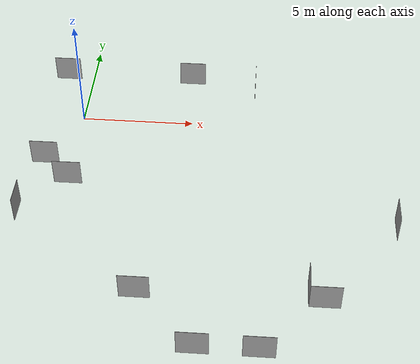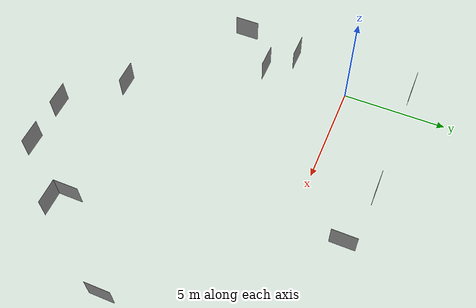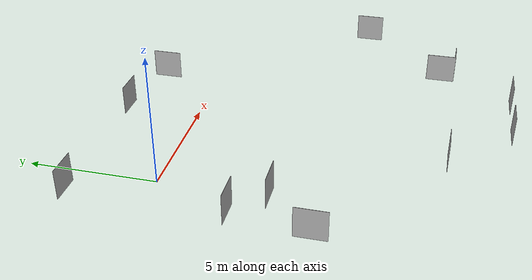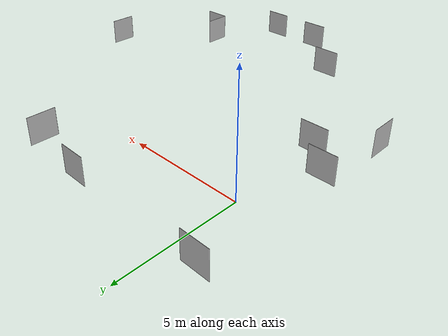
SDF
<sdf version="1.4">
 <world name="default">
  <scene><ambient>0.5 0.5 0.5 1</ambient><background>0.5 0.5 0.5 1</background><shadows>false</shadows></scene>
  <physics type="ode">
   <gravity>0 0 -9.81</gravity>
   <ode>
    <solver><type>quick</type><iters>10</iters><sor>1.3</sor></solver>
    <constraints>
     <cfm>0.0</cfm>
     <erp>0.2</erp>
     <contact_max_correcting_vel>100.0</contact_max_correcting_vel>
     <contact_surface_layer>0.001</contact_surface_layer>
    </constraints>
   </ode>
   <real_time_update_rate>1000</real_time_update_rate>
   <max_step_size>0.001</max_step_size>
  </physics>
  <light type="directional" name="directional_light_1">
   <cast_shadows>false</cast_shadows>
   <pose>0 0 30 0.1 0.1 0</pose>
   <diffuse>1.0 1.0 1.0 1</diffuse>
   <specular>.1 .1 .1 1</specular>
   <attenuation><range>300</range></attenuation>
   <direction>0.1 0.1 -1</direction>
  </light>
  <model name="small_wall_qr_5">
   <static>true</static>
   <link name="small_wall_qr_5_link">
    <pose>-1.2 2.4 0 0 0 0</pose>
    <collision name="small_wall_qr_5_collision">
     <geometry><mesh><uri>file://small_wall_qr_101.dae</uri><scale>1 1 1</scale></mesh></geometry>
    </collision>
    <visual name="small_wall_qr_5_visual">
     <cast_shadows>false</cast_shadows>
     <geometry><mesh><uri>file://small_wall_qr_101.dae</uri><scale>1 1 1</scale></mesh></geometry>
    </visual>
   </link>
  </model>
  <model name="small_wall_qr_7">
   <static>true</static>
   <link name="small_wall_qr_7_link">
    <pose>4.8 2.4 0 0 0 0</pose>
    <collision name="small_wall_qr_7_collision">
     <geometry><mesh><uri>file://small_wall_qr_102.dae</uri><scale>1 1 1</scale></mesh></geometry>
    </collision>
    <visual name="small_wall_qr_7_visual">
     <cast_shadows>false</cast_shadows>
     <geometry><mesh><uri>file://small_wall_qr_102.dae</uri><scale>1 1 1</scale></mesh></geometry>
    </visual>
   </link>
  </model>
  <model name="small_wall_qr_9">
   <static>true</static>
   <link name="small_wall_qr_9_link">
    <pose>7.2 2.4 0 0 0 -1.5708</pose>
    <collision name="small_wall_qr_9_collision">
     <geometry><mesh><uri>file://small_wall_qr_103.dae</uri><scale>1 1 1</scale></mesh></geometry>
    </collision>
    <visual name="small_wall_qr_9_visual">
     <cast_shadows>false</cast_shadows>
     <geometry><mesh><uri>file://small_wall_qr_103.dae</uri><scale>1 1 1</scale></mesh></geometry>
    </visual>
   </link>
  </model>
  <model name="small_wall_qr_13">
   <static>true</static>
   <link name="small_wall_qr_13_link">
    <pose>9.6 -9.6 0 0 0 -1.5708</pose>
    <collision name="small_wall_qr_13_collision">
     <geometry><mesh><uri>file://small_wall_qr_104.dae</uri><scale>1 1 1</scale></mesh></geometry>
    </collision>
    <visual name="small_wall_qr_13_visual">
     <cast_shadows>false</cast_shadows>
     <geometry><mesh><uri>file://small_wall_qr_104.dae</uri><scale>1 1 1</scale></mesh></geometry>
    </visual>
   </link>
  </model>
  <model name="small_wall_qr_15">
   <static>true</static>
   <link name="small_wall_qr_15_link">
    <pose>10.8 -10.8 0 0 0 0</pose>
    <collision name="small_wall_qr_15_collision">
     <geometry><mesh><uri>file://small_wall_qr_105.dae</uri><scale>1 1 1</scale></mesh></geometry>
    </collision>
    <visual name="small_wall_qr_15_visual">
     <cast_shadows>false</cast_shadows>
     <geometry><mesh><uri>file://small_wall_qr_105.dae</uri><scale>1 1 1</scale></mesh></geometry>
    </visual>
   </link>
  </model>
  <model name="small_wall_qr_17">
   <static>true</static>
   <link name="small_wall_qr_17_link">
    <pose>8.4 -12 0 0 0 -3.14159</pose>
    <collision name="small_wall_qr_17_collision">
     <geometry><mesh><uri>file://small_wall_qr_106.dae</uri><scale>1 1 1</scale></mesh></geometry>
    </collision>
    <visual name="small_wall_qr_17_visual">
     <cast_shadows>false</cast_shadows>
     <geometry><mesh><uri>file://small_wall_qr_106.dae</uri><scale>1 1 1</scale></mesh></geometry>
    </visual>
   </link>
  </model>
  <model name="small_wall_qr_18">
   <static>true</static>
   <link name="small_wall_qr_18_link">
    <pose>6 -12 0 0 0 -3.14159</pose>
    <collision name="small_wall_qr_18_collision">
     <geometry><mesh><uri>file://small_wall_qr_107.dae</uri><scale>1 1 1</scale></mesh></geometry>
    </collision>
    <visual name="small_wall_qr_18_visual">
     <cast_shadows>false</cast_shadows>
     <geometry><mesh><uri>file://small_wall_qr_107.dae</uri><scale>1 1 1</scale></mesh></geometry>
    </visual>
   </link>
  </model>
  <model name="small_wall_qr_20">
   <static>true</static>
   <link name="small_wall_qr_20_link">
    <pose>3.6 -9.6 0 0 0 -3.14159</pose>
    <collision name="small_wall_qr_20_collision">
     <geometry><mesh><uri>file://small_wall_qr_108.dae</uri><scale>1 1 1</scale></mesh></geometry>
    </collision>
    <visual name="small_wall_qr_20_visual">
     <cast_shadows>false</cast_shadows>
     <geometry><mesh><uri>file://small_wall_qr_108.dae</uri><scale>1 1 1</scale></mesh></geometry>
    </visual>
   </link>
  </model>
  <model name="small_wall_qr_22">
   <static>true</static>
   <link name="small_wall_qr_22_link">
    <pose>-1.2 -6 0 0 0 -4.71239</pose>
    <collision name="small_wall_qr_22_collision">
     <geometry><mesh><uri>file://small_wall_qr_109.dae</uri><scale>1 1 1</scale></mesh></geometry>
    </collision>
    <visual name="small_wall_qr_22_visual">
     <cast_shadows>false</cast_shadows>
     <geometry><mesh><uri>file://small_wall_qr_109.dae</uri><scale>1 1 1</scale></mesh></geometry>
    </visual>
   </link>
  </model>
  <model name="small_wall_qr_28">
   <static>true</static>
   <link name="small_wall_qr_28_link">
    <pose>0 -4.8 0 0 0 0</pose>
    <collision name="small_wall_qr_28_collision">
     <geometry><mesh><uri>file://small_wall_qr_110.dae</uri><scale>1 1 1</scale></mesh></geometry>
    </collision>
    <visual name="small_wall_qr_28_visual">
     <cast_shadows>false</cast_shadows>
     <geometry><mesh><uri>file://small_wall_qr_110.dae</uri><scale>1 1 1</scale></mesh></geometry>
    </visual>
   </link>
  </model>
  <model name="small_wall_qr_30">
   <static>true</static>
   <link name="small_wall_qr_30_link">
    <pose>-1.2 -2.4 0 0 0 -3.14159</pose>
    <collision name="small_wall_qr_30_collision">
     <geometry><mesh><uri>file://small_wall_qr_111.dae</uri><scale>1 1 1</scale></mesh></geometry>
    </collision>
    <visual name="small_wall_qr_30_visual">
     <cast_shadows>false</cast_shadows>
     <geometry><mesh><uri>file://small_wall_qr_111.dae</uri><scale>1 1 1</scale></mesh></geometry>
    </visual>
   </link>
  </model>
  <model name="small_wall_qr_34">
   <static>true</static>
   <link name="small_wall_qr_34_link">
    <pose>13.2 -6 0 0 0 -1.5708</pose>
    <collision name="small_wall_qr_34_collision">
     <geometry><mesh><uri>file://small_wall_qr_112.dae</uri><scale>1 1 1</scale></mesh></geometry>
    </collision>
    <visual name="small_wall_qr_34_visual">
     <cast_shadows>false</cast_shadows>
     <geometry><mesh><uri>file://small_wall_qr_112.dae</uri><scale>1 1 1</scale></mesh></geometry>
    </visual>
   </link>
  </model>
 </world>
</sdf>
